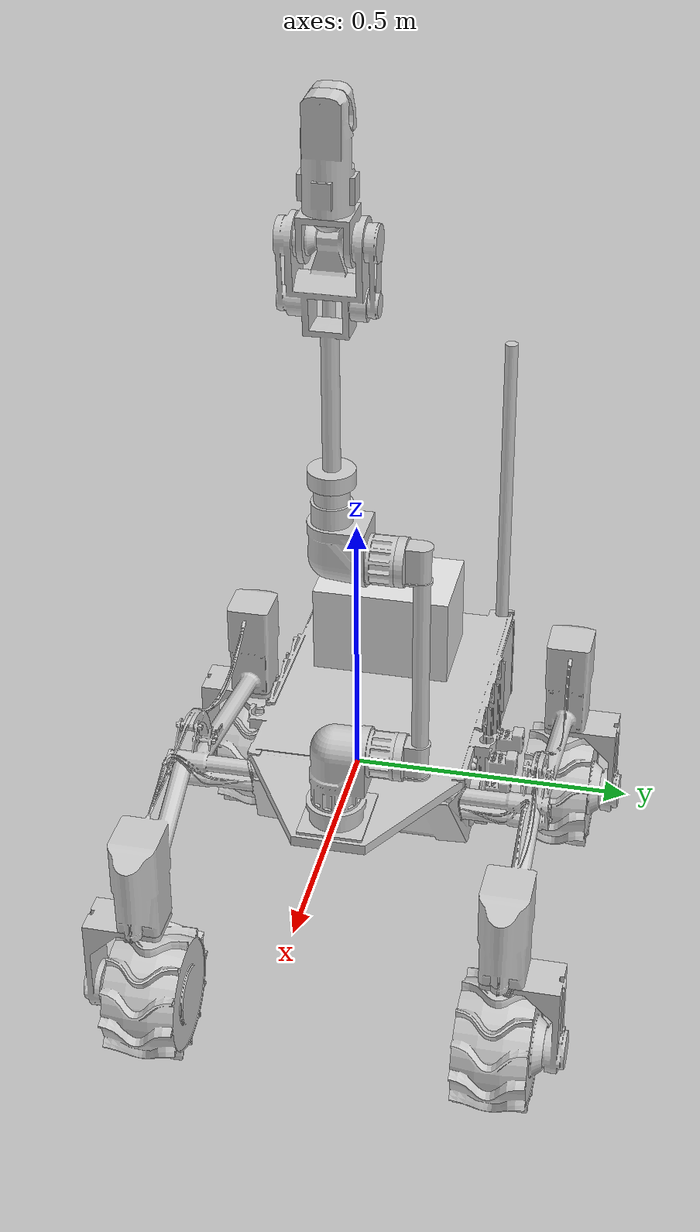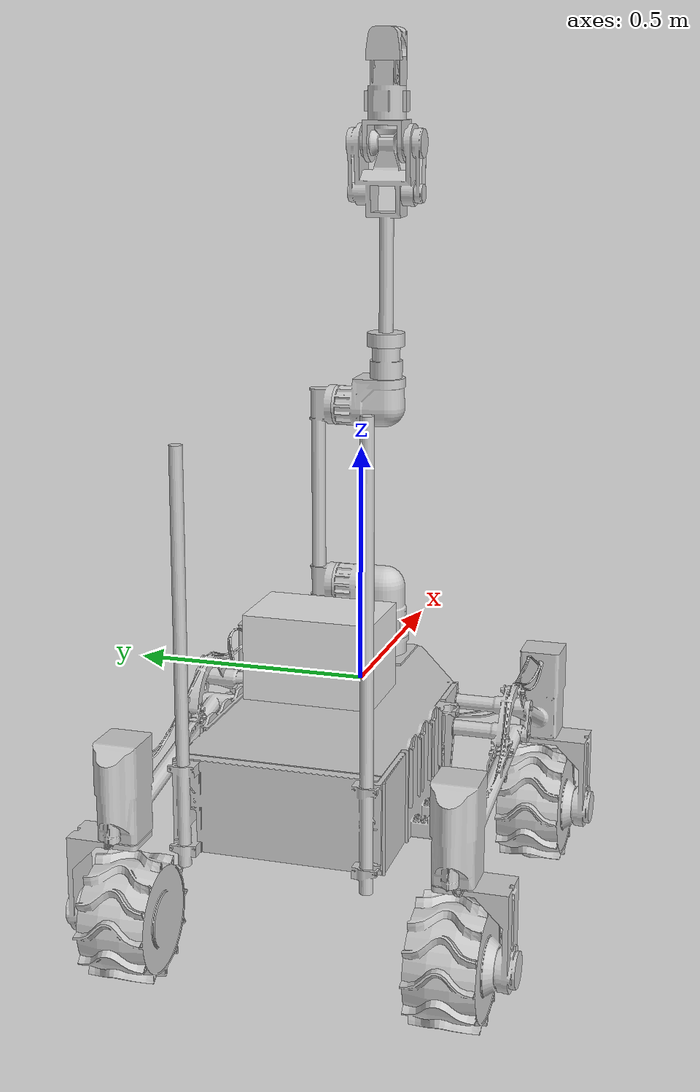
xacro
<?xml version="1.0"?>
<robot xmlns:xacro="http://www.ros.org/wiki/xacro" name="kalman">
    <!-- base Kalman links -->
    <xacro:include filename="$(find kalman_description)/urdf/kalman.urdf.xacro" />
    <xacro:kalman />

    <!-- arm links -->
    <xacro:include filename="$(find kalman_description)/urdf/arm.urdf.xacro" />
    <xacro:arm base_link="base_link" />
</robot>

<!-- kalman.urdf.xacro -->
<robot xmlns:xacro="http://www.ros.org/wiki/xacro" name="kalman">
    <xacro:macro name="kalman">
        <!-- https://www.ros.org/reps/rep-0120.html -->
        <link name="base_link" />
        <link name="base_footprint" />
        <joint name="base_footprint_joint" type="fixed">
            <origin xyz="-0.11 0 -0.45" />
            <parent link="base_link" />
            <child link="base_footprint" />
        </joint>

        <link name="rock_box">
            <visual>
                <origin xyz="0 0 0.05" rpy="0 0 0" />
                <geometry>
                    <box size="0.17 0.26 0.17" />
                </geometry>
                <material name="rock_box_mat">
                    <color rgba="0.9 0.9 0.9 1" />
                </material>
            </visual>
        </link>
        <joint name="base_to_rock_box_joint" type="fixed">
            <parent link="base_link" />
            <child link="rock_box" />
            <origin xyz="-0.28 0.0 0.1" rpy="0 0 0" />
        </joint>
        <!-- additional robot model -->
        <xacro:include filename="$(find kalman_description)/urdf/visual_model.urdf.xacro" />
        <xacro:visual_model base_link="base_link" />
    </xacro:macro>
</robot>

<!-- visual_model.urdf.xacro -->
<robot xmlns:xacro="http://www.ros.org/wiki/xacro" name="kalman">
    <xacro:macro name="visual_model" params="base_link">
        <xacro:include filename="$(find kalman_description)/urdf/cylinder_inertial.urdf.xacro" />

        <material name="white">
            <color rgba="0.8 0.8 0.8 1" />
        </material>

        <link name="body_link">
            <visual>
                <geometry>
                    <mesh filename="package://kalman_description/stl/body.stl" />
                </geometry>
                <material name="white" />
            </visual>
        </link>
        <joint name="body_joint" type="fixed">
            <parent link="${base_link}" />
            <child link="body_link" />
        </joint>

        <xacro:macro name="suspension" params="y_side y_scale">
            <link name="suspension_${y_side}_link">
                <visual>
                    <geometry>
                        <mesh filename="package://kalman_description/stl/suspension_r.stl"
                            scale="1 ${y_scale} 1" />
                    </geometry>
                    <material name="white" />
                </visual>
                <xacro:cylinder_inertial radius="0.1" length="1" mass="1">
                    <!-- This is not the correct intertia of the suspension,
                    but it shuts up the warnings when supsension is dynamic. -->
                    <origin rpy="1.5708 0 0" />
                </xacro:cylinder_inertial>
            </link>
            <joint name="suspension_${y_side}_joint" type="fixed">
                <!-- Suspension is static for now. -->
                <origin xyz="0.009 0 -0.06" />
                <axis xyz="0 1 0" />
                <parent link="body_link" />
                <child link="suspension_${y_side}_link" />
            </joint>
        </xacro:macro>
        <xacro:suspension y_side="r" y_scale="1" />
        <xacro:suspension y_side="l" y_scale="-1" />

        <xacro:macro name="swivel" params="x_side y_side y_scale xyz">
            <link name="swivel_${x_side}${y_side}_link">
                <visual>
                    <geometry>
                        <mesh filename="package://kalman_description/stl/swivel_fr.stl"
                            scale="1 ${y_scale} 1" />
                    </geometry>
                    <material name="white" />
                </visual>
                <xacro:cylinder_inertial radius="0.08" length="0.35" mass="2.25">
                    <origin xyz="0 0 -0.25" />
                </xacro:cylinder_inertial>
            </link>
            <joint name="swivel_${x_side}${y_side}_joint" type="continuous">
                <origin xyz="${xyz}" />
                <axis xyz="0 0 1" />
                <parent link="suspension_${y_side}_link" />
                <child link="swivel_${x_side}${y_side}_link" />
            </joint>
        </xacro:macro>
        <xacro:swivel x_side="f" y_side="r" y_scale="1" xyz="0.295 -0.333 0.06" />
        <xacro:swivel x_side="f" y_side="l" y_scale="-1" xyz="0.295 0.333 0.06" />
        <xacro:swivel x_side="b" y_side="r" y_scale="1" xyz="-0.497 -0.333 0.06" />
        <xacro:swivel x_side="b" y_side="l" y_scale="-1" xyz="-0.497 0.333 0.06" />

        <xacro:macro name="wheel" params="x_side y_side y_scale xyz">
            <link name="wheel_${x_side}${y_side}_link">
                <visual>
                    <geometry>
                        <mesh filename="package://kalman_description/stl/wheel_fr.stl"
                            scale="1 ${y_scale} 1" />
                    </geometry>
                    <material name="white" />
                </visual>
                <collision>
                    <origin rpy="1.5708 0 0" xyz="0 0 0" />
                    <geometry>
                        <cylinder radius="0.12" length="0.15" />
                    </geometry>
                </collision>
                <xacro:cylinder_inertial radius="0.12" length="0.15" mass="3.3">
                    <origin rpy="1.5708 0 0" xyz="0 0 0" />
                </xacro:cylinder_inertial>
            </link>
            <joint name="wheel_${x_side}${y_side}_joint" type="continuous">
                <origin xyz="${xyz}" />
                <axis xyz="0 1 0" />
                <parent link="swivel_${x_side}${y_side}_link" />
                <child link="wheel_${x_side}${y_side}_link" />
            </joint>
        </xacro:macro>
        <xacro:wheel x_side="f" y_side="r" y_scale="1" xyz="0 0 -0.363" />
        <xacro:wheel x_side="f" y_side="l" y_scale="-1" xyz="0 0 -0.363" />
        <xacro:wheel x_side="b" y_side="r" y_scale="1" xyz="0 0 -0.363" />
        <xacro:wheel x_side="b" y_side="l" y_scale="-1" xyz="0 0 -0.363" />
    </xacro:macro>
</robot>

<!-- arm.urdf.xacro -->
<robot xmlns:xacro="http://www.ros.org/wiki/xacro" name="arm">
    <xacro:macro name="arm" params="base_link">
        <material name="arm_mat">
            <color rgba="0.8 0.8 0.8 1" />
        </material>

        <link name="arm_link">
            <visual>
                <geometry>
                    <mesh filename="package://kalman_description/stl/arm0_base.stl" />
                </geometry>
                <material name="arm_mat" />
            </visual>
        </link>
        <joint name="arm_joint" type="fixed">
            <parent link="${base_link}" />
            <child link="arm_link" />
            <origin xyz="0.180 0 0" />
        </joint>

        <link name="arm_link_1">
            <visual>
                <geometry>
                    <mesh filename="package://kalman_description/stl/arm1.stl" />
                </geometry>
                <material name="arm_mat" />
            </visual>
        </link>
        <joint name="arm_joint_1" type="revolute">
            <parent link="arm_link" />
            <child link="arm_link_1" />
            <origin xyz="0 0 0.045" />
            <axis xyz="0 0 1" />
            <limit effort="1000.0" lower="-6.28" upper="6.28" velocity="0.5" />
        </joint>

        <link name="arm_link_2">
            <visual>
                <geometry>
                    <mesh filename="package://kalman_description/stl/arm2.stl" />
                </geometry>
                <material name="arm_mat" />
            </visual>
        </link>
        <joint name="arm_joint_2" type="revolute">
            <parent link="arm_link_1" />
            <child link="arm_link_2" />
            <origin xyz="0 0.110 0.109" />
            <axis xyz="0 1 0" />
            <limit effort="1000.0" lower="-3.14" upper="3.14" velocity="0.5" />
        </joint>

        <link name="arm_link_3">
            <visual>
                <geometry>
                    <mesh filename="package://kalman_description/stl/arm3.stl" />
                </geometry>
                <material name="arm_mat" />
            </visual>
        </link>
        <joint name="arm_joint_3" type="revolute">
            <parent link="arm_link_2" />
            <child link="arm_link_3" />
            <origin xyz="0 0 0.397" />
            <axis xyz="0 1 0" />
            <limit effort="1000.0" lower="-2.88" upper="2.88" velocity="0.5" />
        </joint>

        <link name="arm_link_4">
            <visual>
                <geometry>
                    <mesh filename="package://kalman_description/stl/arm4.stl" />
                </geometry>
                <material name="arm_mat" />
            </visual>
        </link>
        <joint name="arm_joint_4" type="revolute">
            <parent link="arm_link_3" />
            <child link="arm_link_4" />
            <origin xyz="0 -0.110 0.133" />
            <axis xyz="0 0 1" />
            <limit effort="1000.0" lower="-6.40" upper="6.40" velocity="0.5" />
        </joint>

        <link name="arm_link_5">
            <visual>
                <geometry>
                    <mesh filename="package://kalman_description/stl/arm5.stl" />
                </geometry>
                <material name="arm_mat" />
            </visual>
        </link>
        <joint name="arm_joint_5" type="revolute">
            <parent link="arm_link_4" />
            <child link="arm_link_5" />
            <origin xyz="0 0 0.423" />
            <axis xyz="0 1 0" />
            <limit effort="1000.0" lower="-1.75" upper="1.75" velocity="0.5" />
        </joint>

        <link name="arm_link_6">
            <visual>
                <geometry>
                    <mesh filename="package://kalman_description/stl/arm6.stl" />
                </geometry>
                <material name="arm_mat" />
            </visual>
        </link>
        <joint name="arm_joint_6" type="revolute">
            <parent link="arm_link_5" />
            <child link="arm_link_6" />
            <origin xyz="0 0 0.047" />
            <axis xyz="0 0 1" />
            <limit effort="1000.0" lower="-3.40" upper="3.40" velocity="0.5" />
        </joint>

        <link name="arm_link_jaw">
            <visual>
                <geometry>
                    <mesh filename="package://kalman_description/stl/arm7_jaw.stl" />
                </geometry>
                <material name="arm_mat" />
            </visual>
        </link>
        <joint name="arm_joint_jaw" type="revolute">
            <parent link="arm_link_6" />
            <child link="arm_link_jaw" />
            <origin xyz="-0.016 0 0.086" />
            <axis xyz="0 -1 0" />
            <limit effort="1000.0" lower="-0.10" upper="1.57" velocity="0.5" />
        </joint>

        <link name="arm_link_end" />
        <joint name="arm_joint_end" type="fixed">
            <parent link="arm_link_jaw" />
            <child link="arm_link_end" />
            <origin xyz="0.016 0 0.101" />
        </joint>
    </xacro:macro>
</robot>
